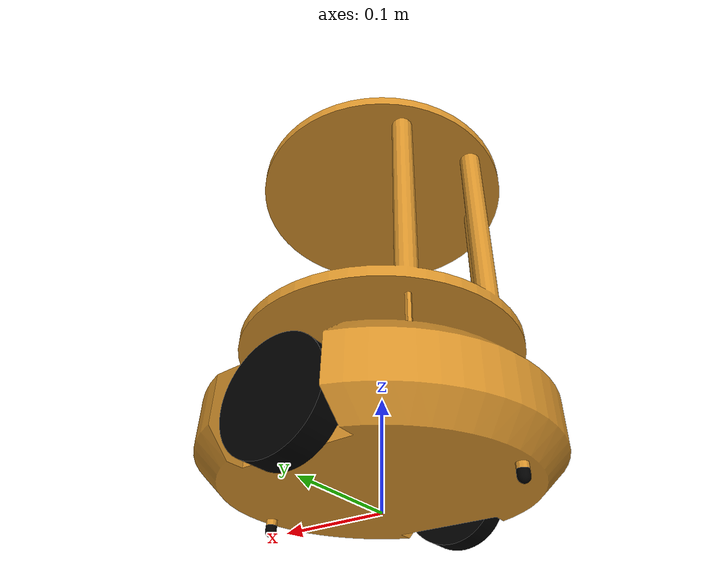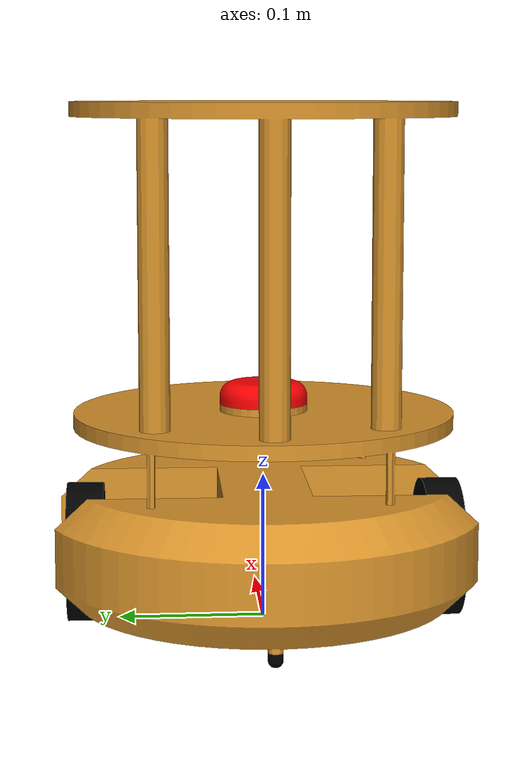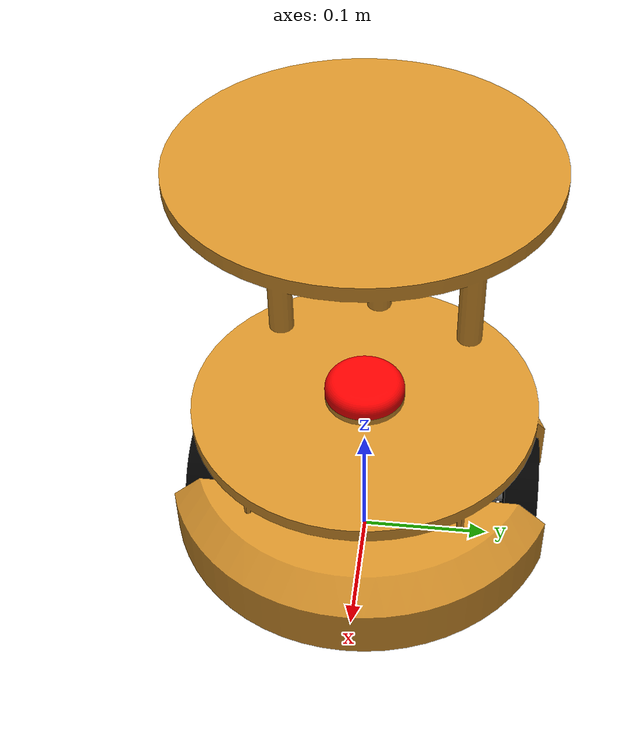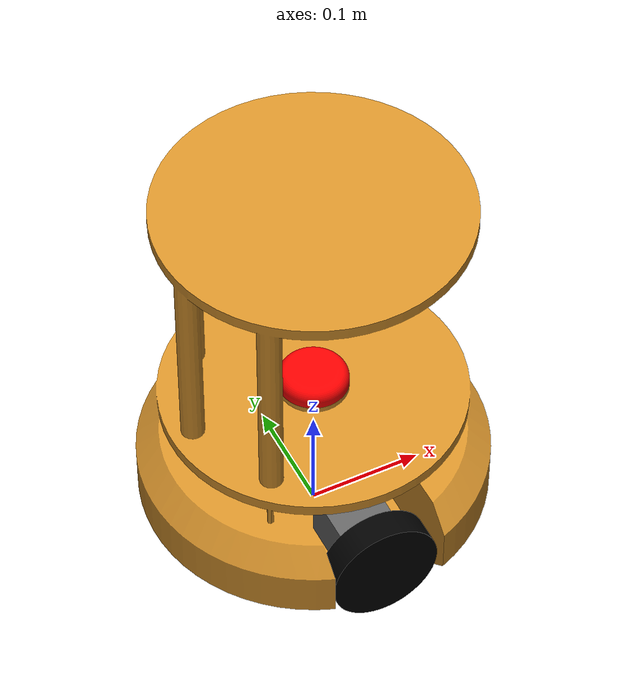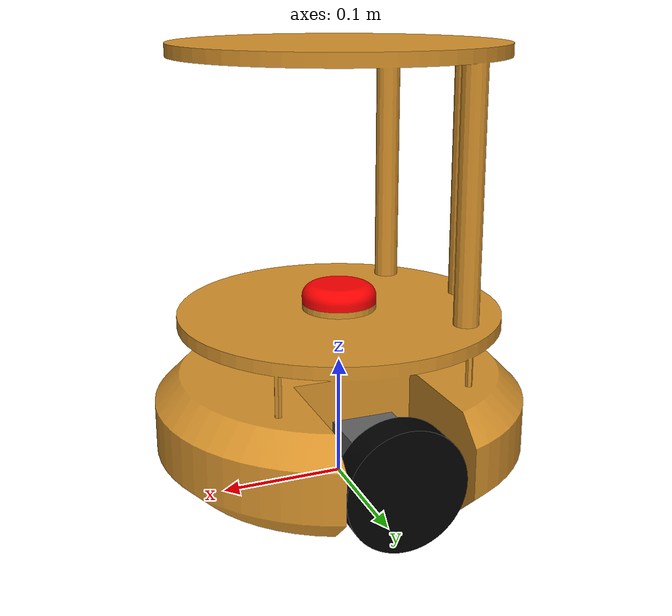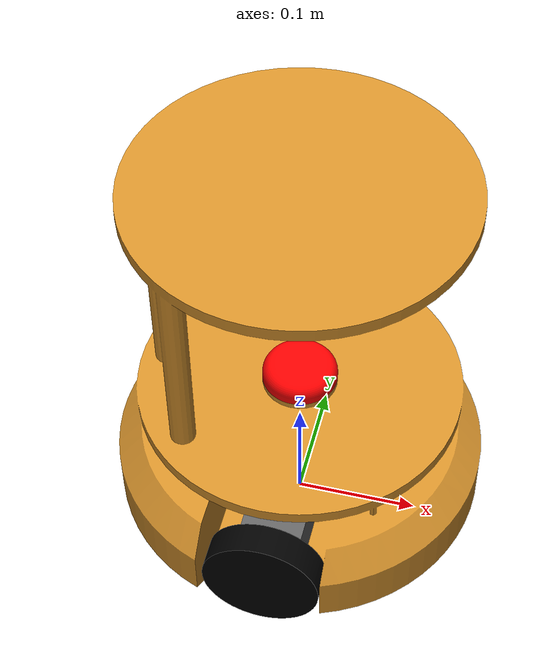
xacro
<?xml version="1.0" ?>
<robot name="fdpbot" xmlns:xacro="http://www.ros.org/wiki/xacro">

<xacro:include filename="$(find fdpbot_description)/urdf/materials.xacro" />
<xacro:include filename="$(find fdpbot_description)/urdf/fdpbot.trans" />
<xacro:include filename="$(find fdpbot_description)/gazebo/fdpbot_materials.gazebo" />
<xacro:include filename="$(find fdpbot_description)/gazebo/fdpbot_physics.gazebo" />
<xacro:include filename="$(find fdpbot_description)/gazebo/fdpbot_plugins.gazebo" />

<link name="base_link">
  <inertial>
    <origin rpy="0 0 0" xyz="-0.003320171518483772 5.915036857965317e-17 0.10251718223732435"/>
    <mass value="2.676650061299748"/>
    <inertia ixx="0.03656" ixy="0.0" ixz="0.001266" iyy="0.044115" iyz="0.0" izz="0.028021"/>
  </inertial>
  <visual>
    <origin rpy="0 0 0" xyz="0 0 0"/>
    <geometry>
      <mesh filename="package://fdpbot_description/meshes/base_link.stl" scale="0.001 0.001 0.001"/>
    </geometry>
    <material name="brown_wood"/>
  </visual>
  <collision>
    <origin rpy="0 0 0" xyz="0 0 0"/>
    <geometry>
      <mesh filename="package://fdpbot_description/meshes/base_link.stl" scale="0.001 0.001 0.001"/>
    </geometry>
  </collision>
</link>

<link name="motor_right_1">
  <inertial>
    <origin rpy="0 0 0" xyz="-3.310528298512151e-15 0.027405101366909962 0.0225"/>
    <mass value="0.9745201877913348"/>
    <inertia ixx="0.000412" ixy="-0.0" ixz="-0.0" iyy="0.000366" iyz="0.0" izz="0.00045"/>
  </inertial>
  <visual>
    <origin rpy="0 0 0" xyz="-0.0 0.105 -0.025"/>
    <geometry>
      <mesh filename="package://fdpbot_description/meshes/motor_right_1.stl" scale="0.001 0.001 0.001"/>
    </geometry>
    <material name="darkgrey"/>
  </visual>
  <collision>
    <origin rpy="0 0 0" xyz="-0.0 0.105 -0.025"/>
    <geometry>
      <mesh filename="package://fdpbot_description/meshes/motor_right_1.stl" scale="0.001 0.001 0.001"/>
    </geometry>
  </collision>
</link>

<link name="motor_left_1">
  <inertial>
    <origin rpy="0 0 0" xyz="-3.310528298512151e-15 -0.027405101366909948 0.0225"/>
    <mass value="0.9745201877913348"/>
    <inertia ixx="0.000412" ixy="0.0" ixz="-0.0" iyy="0.000366" iyz="0.0" izz="0.00045"/>
  </inertial>
  <visual>
    <origin rpy="0 0 0" xyz="-0.0 -0.105 -0.025"/>
    <geometry>
      <mesh filename="package://fdpbot_description/meshes/motor_left_1.stl" scale="0.001 0.001 0.001"/>
    </geometry>
    <material name="darkgrey"/>
  </visual>
  <collision>
    <origin rpy="0 0 0" xyz="-0.0 -0.105 -0.025"/>
    <geometry>
      <mesh filename="package://fdpbot_description/meshes/motor_left_1.stl" scale="0.001 0.001 0.001"/>
    </geometry>
  </collision>
</link>

<link name="wheel_right_1">
  <inertial>
    <origin rpy="0 0 0" xyz="1.2831076122154082e-17 -0.01249999999999997 6.938893903907228e-18"/>
    <mass value="0.16480107837339078"/>
    <inertia ixx="0.000102" ixy="-0.0" ixz="0.0" iyy="0.000186" iyz="0.0" izz="0.000102"/>
  </inertial>
  <visual>
    <origin rpy="0 0 0" xyz="-0.0 0.11 -0.0475"/>
    <geometry>
      <mesh filename="package://fdpbot_description/meshes/wheel_right_1.stl" scale="0.001 0.001 0.001"/>
    </geometry>
    <material name="black"/>
  </visual>
  <collision>
    <origin rpy="0 0 0" xyz="-0.0 0.11 -0.0475"/>
    <geometry>
      <mesh filename="package://fdpbot_description/meshes/wheel_right_1.stl" scale="0.001 0.001 0.001"/>
    </geometry>
  </collision>
</link>

<link name="wheel_left_1">
  <inertial>
    <origin rpy="0 0 0" xyz="1.2831076122154082e-17 0.012499999999999997 6.938893903907228e-18"/>
    <mass value="0.16480107837339078"/>
    <inertia ixx="0.000102" ixy="0.0" ixz="0.0" iyy="0.000186" iyz="0.0" izz="0.000102"/>
  </inertial>
  <visual>
    <origin rpy="0 0 0" xyz="-0.0 -0.11 -0.0475"/>
    <geometry>
      <mesh filename="package://fdpbot_description/meshes/wheel_left_1.stl" scale="0.001 0.001 0.001"/>
    </geometry>
    <material name="black"/>
  </visual>
  <collision>
    <origin rpy="0 0 0" xyz="-0.0 -0.11 -0.0475"/>
    <geometry>
      <mesh filename="package://fdpbot_description/meshes/wheel_left_1.stl" scale="0.001 0.001 0.001"/>
    </geometry>
  </collision>
</link>

<link name="castor_front_1">
  <inertial>
    <origin rpy="0 0 0" xyz="-6.274009090034838e-13 8.481479150569596e-19 -0.004250000000000028"/>
    <mass value="0.005137812985558176"/>
    <inertia ixx="0.0" ixy="-0.0" ixz="0.0" iyy="0.0" iyz="0.0" izz="0.0"/>
  </inertial>
  <visual>
    <origin rpy="0 0 0" xyz="-0.12 -0.0 -0.01"/>
    <geometry>
      <mesh filename="package://fdpbot_description/meshes/castor_front_1.stl" scale="0.001 0.001 0.001"/>
    </geometry>
    <material name="black"/>
  </visual>
  <collision>
    <origin rpy="0 0 0" xyz="-0.12 -0.0 -0.01"/>
    <geometry>
      <mesh filename="package://fdpbot_description/meshes/castor_front_1.stl" scale="0.001 0.001 0.001"/>
    </geometry>
  </collision>
</link>

<link name="castor_back_1">
  <inertial>
    <origin rpy="0 0 0" xyz="-6.273731534278681e-13 8.481479150569596e-19 -0.004250000000000028"/>
    <mass value="0.005137812985558176"/>
    <inertia ixx="0.0" ixy="0.0" ixz="0.0" iyy="0.0" iyz="0.0" izz="0.0"/>
  </inertial>
  <visual>
    <origin rpy="0 0 0" xyz="0.12 -0.0 -0.01"/>
    <geometry>
      <mesh filename="package://fdpbot_description/meshes/castor_back_1.stl" scale="0.001 0.001 0.001"/>
    </geometry>
    <material name="black"/>
  </visual>
  <collision>
    <origin rpy="0 0 0" xyz="0.12 -0.0 -0.01"/>
    <geometry>
      <mesh filename="package://fdpbot_description/meshes/castor_back_1.stl" scale="0.001 0.001 0.001"/>
    </geometry>
  </collision>
</link>

<link name="lidar_1">
  <inertial>
    <origin rpy="0 0 0" xyz="0.0 0.0 0.006997303818004175"/>
    <mass value="0.303540165913117"/>
    <inertia ixx="6.9e-05" ixy="0.0" ixz="-0.0" iyy="6.9e-05" iyz="-0.0" izz="0.000127"/>
  </inertial>
  <visual>
    <origin rpy="0 0 0" xyz="-0.0 -0.0 -0.15"/>
    <geometry>
      <mesh filename="package://fdpbot_description/meshes/lidar_1.stl" scale="0.001 0.001 0.001"/>
    </geometry>
    <material name="red"/>
  </visual>
  <collision>
    <origin rpy="0 0 0" xyz="-0.0 -0.0 -0.15"/>
    <geometry>
      <mesh filename="package://fdpbot_description/meshes/lidar_1.stl" scale="0.001 0.001 0.001"/>
    </geometry>
  </collision>
</link>

<joint name="motor_right_base_joint" type="fixed">
  <origin rpy="0 0 0" xyz="0.0 -0.105 0.025"/>
  <parent link="base_link"/>
  <child link="motor_right_1"/>
</joint>

<joint name="motor_left_base_joint" type="fixed">
  <origin rpy="0 0 0" xyz="0.0 0.105 0.025"/>
  <parent link="base_link"/>
  <child link="motor_left_1"/>
</joint>

<joint name="right_rev" type="continuous">
  <origin rpy="0 0 0" xyz="0.0 -0.005 0.0225"/>
  <parent link="motor_right_1"/>
  <child link="wheel_right_1"/>
  <axis xyz="0.0 1.0 0.0"/>
</joint>

<joint name="left_rev" type="continuous">
  <origin rpy="0 0 0" xyz="0.0 0.005 0.0225"/>
  <parent link="motor_left_1"/>
  <child link="wheel_left_1"/>
  <axis xyz="0.0 1.0 0.0"/>
</joint>

<joint name="caster_front_joint" type="fixed">
  <origin rpy="0 0 0" xyz="0.12 0.0 0.01"/>
  <parent link="base_link"/>
  <child link="castor_front_1"/>
</joint>

<joint name="caster_back_joint" type="fixed">
  <origin rpy="0 0 0" xyz="-0.12 0.0 0.01"/>
  <parent link="base_link"/>
  <child link="castor_back_1"/>
</joint>

<joint name="lidar_joint" type="fixed">
  <origin rpy="0 0 0" xyz="0.0 0.0 0.15"/>
  <parent link="base_link"/>
  <child link="lidar_1"/>
</joint>

</robot>

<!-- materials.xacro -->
<robot name="fdpbot" xmlns:xacro="http://www.ros.org/wiki/xacro" >

<material name="brown_wood">
  <color rgba="0.839 0.572 0.168 1.000"/>
</material>

<material name="black">
  <color rgba="0.000 0.000 0.000 1.000"/>
</material>

<material name="darkgrey">
  <color rgba="0.392 0.392 0.392 1.000"/>
</material>

<material name="red">
  <color rgba="1.000 0.000 0.000 1.000"/>
</material>

</robot>

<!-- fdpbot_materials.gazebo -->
<robot name="fdpbot" xmlns:xacro="http://www.ros.org/wiki/xacro" >

<xacro:property name="body_color" value="Gazebo/Wood" />
<xacro:property name="wheel_color" value="Gazebo/Black" />
<xacro:property name="motor_color" value="Gazebo/DarkGrey" />
<xacro:property name="lidar_color" value="Gazebo/Red" />

<gazebo reference="base_link">
  <material>${body_color}</material>
</gazebo>

<gazebo reference="motor_right_1">
  <material>${motor_color}</material>
</gazebo>

<gazebo reference="motor_left_1">
  <material>${motor_color}</material>
</gazebo>

<gazebo reference="wheel_right_1">
  <material>${wheel_color}</material>
</gazebo>

<gazebo reference="wheel_left_1">
  <material>${wheel_color}</material>
</gazebo>

<gazebo reference="castor_front_1">
  <material>${wheel_color}</material>
</gazebo>

<gazebo reference="castor_back_1">
  <material>${wheel_color}</material>
</gazebo>

<gazebo reference="lidar_1">
  <material>${lidar_color}</material>
</gazebo>

</robot>
